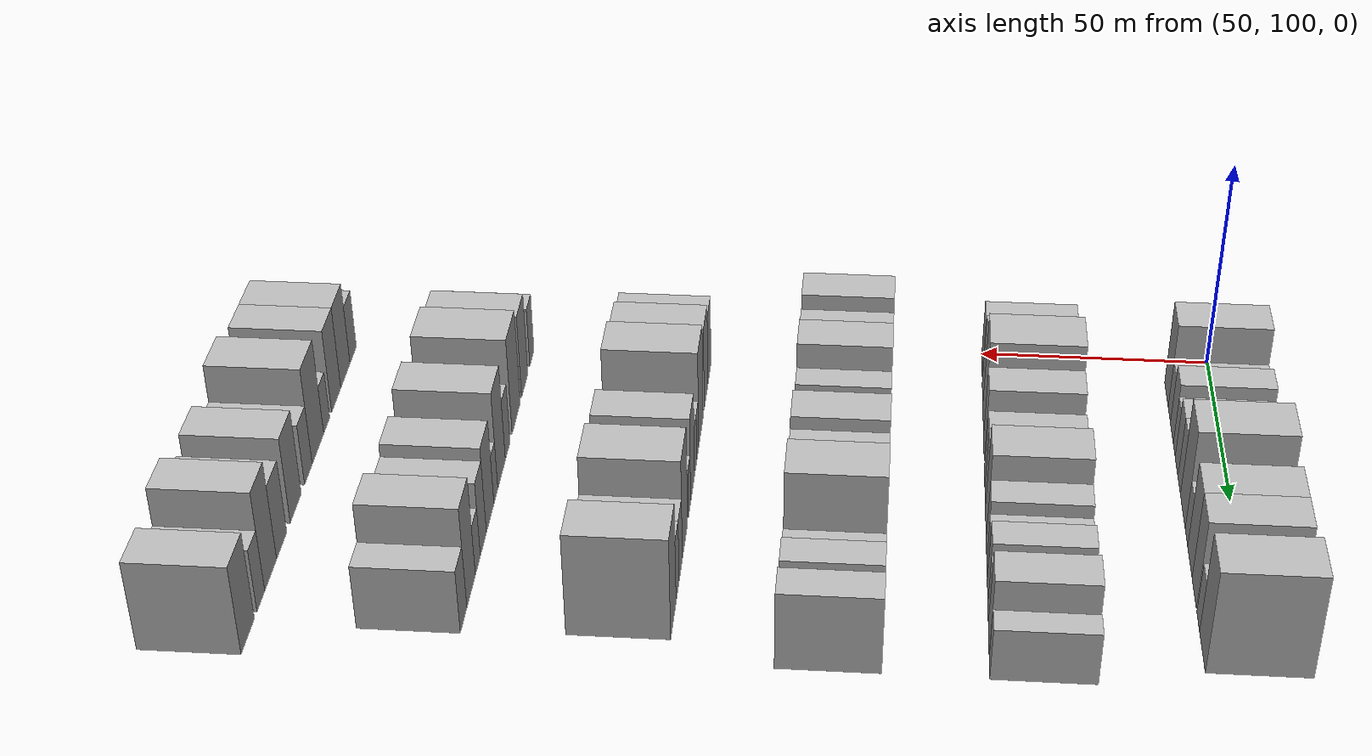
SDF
<sdf version="1.6">
 <world name="default">
  <model name="building_84">
   <static>1</static>
   <pose>50.0000 112.8845 0 0.000000 0.000000 0.000000</pose>
   <link name="link">
    <pose>0 0 10.50 0 0 0</pose>
    <collision name="collision"><geometry><box><size>20.0000 9.4455 21.0000</size></box></geometry></collision>
    <visual name="visual">
     <cast_shadows>0</cast_shadows>
     <geometry><box><size>20.0000 9.4455 21.0000</size></box></geometry>
     <material>
      <script>
       <uri>model://HANNAS_wall/materials/scripts</uri>
       <uri>model://HANNAS_wall/materials/textures</uri>
       <name>vrc/HANNAS_wall</name>
      </script>
     </material>
    </visual>
   </link>
  </model>
  <model name="building_85">
   <static>1</static>
   <pose>50.0000 120.5579 0 0.000000 0.000000 0.000000</pose>
   <link name="link">
    <pose>0 0 6.00 0 0 0</pose>
    <collision name="collision"><geometry><box><size>20.0000 5.9013 12.0000</size></box></geometry></collision>
    <visual name="visual">
     <cast_shadows>0</cast_shadows>
     <geometry><box><size>20.0000 5.9013 12.0000</size></box></geometry>
     <material>
      <script>
       <uri>model://HANNAS_wall/materials/scripts</uri>
       <uri>model://HANNAS_wall/materials/textures</uri>
       <name>vrc/HANNAS_wall</name>
      </script>
     </material>
    </visual>
   </link>
  </model>
  <model name="building_86">
   <static>1</static>
   <pose>50.0000 127.2255 0 0.000000 0.000000 0.000000</pose>
   <link name="link">
    <pose>0 0 7.50 0 0 0</pose>
    <collision name="collision"><geometry><box><size>20.0000 7.4338 15.0000</size></box></geometry></collision>
    <visual name="visual">
     <cast_shadows>0</cast_shadows>
     <geometry><box><size>20.0000 7.4338 15.0000</size></box></geometry>
     <material>
      <script>
       <uri>model://HANNAS_wall/materials/scripts</uri>
       <uri>model://HANNAS_wall/materials/textures</uri>
       <name>vrc/HANNAS_wall</name>
      </script>
     </material>
    </visual>
   </link>
  </model>
  <model name="building_87">
   <static>1</static>
   <pose>50.0000 133.3563 0 0.000000 0.000000 0.000000</pose>
   <link name="link">
    <pose>0 0 6.00 0 0 0</pose>
    <collision name="collision"><geometry><box><size>20.0000 4.8277 12.0000</size></box></geometry></collision>
    <visual name="visual">
     <cast_shadows>0</cast_shadows>
     <geometry><box><size>20.0000 4.8277 12.0000</size></box></geometry>
     <material>
      <script>
       <uri>model://HANNAS_wall/materials/scripts</uri>
       <uri>model://HANNAS_wall/materials/textures</uri>
       <name>vrc/HANNAS_wall</name>
      </script>
     </material>
    </visual>
   </link>
  </model>
  <model name="building_88">
   <static>1</static>
   <pose>50.0000 139.2260 0 0.000000 0.000000 0.000000</pose>
   <link name="link">
    <pose>0 0 7.50 0 0 0</pose>
    <collision name="collision"><geometry><box><size>20.0000 6.9118 15.0000</size></box></geometry></collision>
    <visual name="visual">
     <cast_shadows>0</cast_shadows>
     <geometry><box><size>20.0000 6.9118 15.0000</size></box></geometry>
     <material>
      <script>
       <uri>model://HANNAS_wall/materials/scripts</uri>
       <uri>model://HANNAS_wall/materials/textures</uri>
       <name>vrc/HANNAS_wall</name>
      </script>
     </material>
    </visual>
   </link>
  </model>
  <model name="building_89">
   <static>1</static>
   <pose>50.0000 145.6920 0 0.000000 0.000000 0.000000</pose>
   <link name="link">
    <pose>0 0 7.50 0 0 0</pose>
    <collision name="collision"><geometry><box><size>20.0000 6.0202 15.0000</size></box></geometry></collision>
    <visual name="visual">
     <cast_shadows>0</cast_shadows>
     <geometry><box><size>20.0000 6.0202 15.0000</size></box></geometry>
     <material>
      <script>
       <uri>model://HANNAS_wall/materials/scripts</uri>
       <uri>model://HANNAS_wall/materials/textures</uri>
       <name>vrc/HANNAS_wall</name>
      </script>
     </material>
    </visual>
   </link>
  </model>
  <model name="building_90">
   <static>1</static>
   <pose>50.0000 154.3298 0 0.000000 0.000000 0.000000</pose>
   <link name="link">
    <pose>0 0 12.00 0 0 0</pose>
    <collision name="collision"><geometry><box><size>20.0000 11.2555 24.0000</size></box></geometry></collision>
    <visual name="visual">
     <cast_shadows>0</cast_shadows>
     <geometry><box><size>20.0000 11.2555 24.0000</size></box></geometry>
     <material>
      <script>
       <uri>model://HANNAS_wall/materials/scripts</uri>
       <uri>model://HANNAS_wall/materials/textures</uri>
       <name>vrc/HANNAS_wall</name>
      </script>
     </material>
    </visual>
   </link>
  </model>
  <model name="building_91">
   <static>1</static>
   <pose>50.0000 162.8554 0 0.000000 0.000000 0.000000</pose>
   <link name="link">
    <pose>0 0 6.00 0 0 0</pose>
    <collision name="collision"><geometry><box><size>20.0000 5.7955 12.0000</size></box></geometry></collision>
    <visual name="visual">
     <cast_shadows>0</cast_shadows>
     <geometry><box><size>20.0000 5.7955 12.0000</size></box></geometry>
     <material>
      <script>
       <uri>model://HANNAS_wall/materials/scripts</uri>
       <uri>model://HANNAS_wall/materials/textures</uri>
       <name>vrc/HANNAS_wall</name>
      </script>
     </material>
    </visual>
   </link>
  </model>
  <model name="building_92">
   <static>1</static>
   <pose>50.0000 170.5846 0 0.000000 0.000000 0.000000</pose>
   <link name="link">
    <pose>0 0 10.50 0 0 0</pose>
    <collision name="collision"><geometry><box><size>20.0000 9.6629 21.0000</size></box></geometry></collision>
    <visual name="visual">
     <cast_shadows>0</cast_shadows>
     <geometry><box><size>20.0000 9.6629 21.0000</size></box></geometry>
     <material>
      <script>
       <uri>model://HANNAS_wall/materials/scripts</uri>
       <uri>model://HANNAS_wall/materials/textures</uri>
       <name>vrc/HANNAS_wall</name>
      </script>
     </material>
    </visual>
   </link>
  </model>
  <model name="building_93">
   <static>1</static>
   <pose>50.0000 180.0766 0 0.000000 0.000000 0.000000</pose>
   <link name="link">
    <pose>0 0 10.50 0 0 0</pose>
    <collision name="collision"><geometry><box><size>20.0000 9.3212 21.0000</size></box></geometry></collision>
    <visual name="visual">
     <cast_shadows>0</cast_shadows>
     <geometry><box><size>20.0000 9.3212 21.0000</size></box></geometry>
     <material>
      <script>
       <uri>model://HANNAS_wall/materials/scripts</uri>
       <uri>model://HANNAS_wall/materials/textures</uri>
       <name>vrc/HANNAS_wall</name>
      </script>
     </material>
    </visual>
   </link>
  </model>
  <model name="building_94">
   <static>1</static>
   <pose>50.0000 188.5994 0 0.000000 0.000000 0.000000</pose>
   <link name="link">
    <pose>0 0 6.00 0 0 0</pose>
    <collision name="collision"><geometry><box><size>20.0000 5.7244 12.0000</size></box></geometry></collision>
    <visual name="visual">
     <cast_shadows>0</cast_shadows>
     <geometry><box><size>20.0000 5.7244 12.0000</size></box></geometry>
     <material>
      <script>
       <uri>model://HANNAS_wall/materials/scripts</uri>
       <uri>model://HANNAS_wall/materials/textures</uri>
       <name>vrc/HANNAS_wall</name>
      </script>
     </material>
    </visual>
   </link>
  </model>
  <model name="building_95">
   <static>1</static>
   <pose>50.0000 197.2768 0 0.000000 0.000000 0.000000</pose>
   <link name="link">
    <pose>0 0 12.00 0 0 0</pose>
    <collision name="collision"><geometry><box><size>20.0000 11.6303 24.0000</size></box></geometry></collision>
    <visual name="visual">
     <cast_shadows>0</cast_shadows>
     <geometry><box><size>20.0000 11.6303 24.0000</size></box></geometry>
     <material>
      <script>
       <uri>model://HANNAS_wall/materials/scripts</uri>
       <uri>model://HANNAS_wall/materials/textures</uri>
       <name>vrc/HANNAS_wall</name>
      </script>
     </material>
    </visual>
   </link>
  </model>
  <model name="building_223">
   <static>1</static>
   <pose>90.0000 105.0967 0 0.000000 0.000000 0.000000</pose>
   <link name="link">
    <pose>0 0 7.50 0 0 0</pose>
    <collision name="collision"><geometry><box><size>20.0000 7.2370 15.0000</size></box></geometry></collision>
    <visual name="visual">
     <cast_shadows>0</cast_shadows>
     <geometry><box><size>20.0000 7.2370 15.0000</size></box></geometry>
     <material>
      <script>
       <uri>model://HANNAS_wall/materials/scripts</uri>
       <uri>model://HANNAS_wall/materials/textures</uri>
       <name>vrc/HANNAS_wall</name>
      </script>
     </material>
    </visual>
   </link>
  </model>
  <model name="building_224">
   <static>1</static>
   <pose>90.0000 115.9563 0 0.000000 0.000000 0.000000</pose>
   <link name="link">
    <pose>0 0 9.00 0 0 0</pose>
    <collision name="collision"><geometry><box><size>20.0000 8.4823 18.0000</size></box></geometry></collision>
    <visual name="visual">
     <cast_shadows>0</cast_shadows>
     <geometry><box><size>20.0000 8.4823 18.0000</size></box></geometry>
     <material>
      <script>
       <uri>model://HANNAS_wall/materials/scripts</uri>
       <uri>model://HANNAS_wall/materials/textures</uri>
       <name>vrc/HANNAS_wall</name>
      </script>
     </material>
    </visual>
   </link>
  </model>
  <model name="building_225">
   <static>1</static>
   <pose>90.0000 125.8186 0 0.000000 0.000000 0.000000</pose>
   <link name="link">
    <pose>0 0 12.00 0 0 0</pose>
    <collision name="collision"><geometry><box><size>20.0000 11.2424 24.0000</size></box></geometry></collision>
    <visual name="visual">
     <cast_shadows>0</cast_shadows>
     <geometry><box><size>20.0000 11.2424 24.0000</size></box></geometry>
     <material>
      <script>
       <uri>model://HANNAS_wall/materials/scripts</uri>
       <uri>model://HANNAS_wall/materials/textures</uri>
       <name>vrc/HANNAS_wall</name>
      </script>
     </material>
    </visual>
   </link>
  </model>
  <model name="building_226">
   <static>1</static>
   <pose>90.0000 135.6949 0 0.000000 0.000000 0.000000</pose>
   <link name="link">
    <pose>0 0 9.00 0 0 0</pose>
    <collision name="collision"><geometry><box><size>20.0000 8.5102 18.0000</size></box></geometry></collision>
    <visual name="visual">
     <cast_shadows>0</cast_shadows>
     <geometry><box><size>20.0000 8.5102 18.0000</size></box></geometry>
     <material>
      <script>
       <uri>model://HANNAS_wall/materials/scripts</uri>
       <uri>model://HANNAS_wall/materials/textures</uri>
       <name>vrc/HANNAS_wall</name>
      </script>
     </material>
    </visual>
   </link>
  </model>
  <model name="building_227">
   <static>1</static>
   <pose>90.0000 146.0924 0 0.000000 0.000000 0.000000</pose>
   <link name="link">
    <pose>0 0 7.50 0 0 0</pose>
    <collision name="collision"><geometry><box><size>20.0000 6.2847 15.0000</size></box></geometry></collision>
    <visual name="visual">
     <cast_shadows>0</cast_shadows>
     <geometry><box><size>20.0000 6.2847 15.0000</size></box></geometry>
     <material>
      <script>
       <uri>model://HANNAS_wall/materials/scripts</uri>
       <uri>model://HANNAS_wall/materials/textures</uri>
       <name>vrc/HANNAS_wall</name>
      </script>
     </material>
    </visual>
   </link>
  </model>
  <model name="building_228">
   <static>1</static>
   <pose>90.0000 152.6664 0 0.000000 0.000000 0.000000</pose>
   <link name="link">
    <pose>0 0 7.50 0 0 0</pose>
    <collision name="collision"><geometry><box><size>20.0000 6.8633 15.0000</size></box></geometry></collision>
    <visual name="visual">
     <cast_shadows>0</cast_shadows>
     <geometry><box><size>20.0000 6.8633 15.0000</size></box></geometry>
     <material>
      <script>
       <uri>model://HANNAS_wall/materials/scripts</uri>
       <uri>model://HANNAS_wall/materials/textures</uri>
       <name>vrc/HANNAS_wall</name>
      </script>
     </material>
    </visual>
   </link>
  </model>
  <model name="building_229">
   <static>1</static>
   <pose>90.0000 161.2307 0 0.000000 0.000000 0.000000</pose>
   <link name="link">
    <pose>0 0 10.50 0 0 0</pose>
    <collision name="collision"><geometry><box><size>20.0000 10.2653 21.0000</size></box></geometry></collision>
    <visual name="visual">
     <cast_shadows>0</cast_shadows>
     <geometry><box><size>20.0000 10.2653 21.0000</size></box></geometry>
     <material>
      <script>
       <uri>model://HANNAS_wall/materials/scripts</uri>
       <uri>model://HANNAS_wall/materials/textures</uri>
       <name>vrc/HANNAS_wall</name>
      </script>
     </material>
    </visual>
   </link>
  </model>
  <model name="building_230">
   <static>1</static>
   <pose>90.0000 169.8623 0 0.000000 0.000000 0.000000</pose>
   <link name="link">
    <pose>0 0 7.50 0 0 0</pose>
    <collision name="collision"><geometry><box><size>20.0000 6.9980 15.0000</size></box></geometry></collision>
    <visual name="visual">
     <cast_shadows>0</cast_shadows>
     <geometry><box><size>20.0000 6.9980 15.0000</size></box></geometry>
     <material>
      <script>
       <uri>model://HANNAS_wall/materials/scripts</uri>
       <uri>model://HANNAS_wall/materials/textures</uri>
       <name>vrc/HANNAS_wall</name>
      </script>
     </material>
    </visual>
   </link>
  </model>
  <model name="building_231">
   <static>1</static>
   <pose>90.0000 175.8409 0 0.000000 0.000000 0.000000</pose>
   <link name="link">
    <pose>0 0 6.00 0 0 0</pose>
    <collision name="collision"><geometry><box><size>20.0000 4.9593 12.0000</size></box></geometry></collision>
    <visual name="visual">
     <cast_shadows>0</cast_shadows>
     <geometry><box><size>20.0000 4.9593 12.0000</size></box></geometry>
     <material>
      <script>
       <uri>model://HANNAS_wall/materials/scripts</uri>
       <uri>model://HANNAS_wall/materials/textures</uri>
       <name>vrc/HANNAS_wall</name>
      </script>
     </material>
    </visual>
   </link>
  </model>
  <model name="building_232">
   <static>1</static>
   <pose>90.0000 182.8585 0 0.000000 0.000000 0.000000</pose>
   <link name="link">
    <pose>0 0 7.50 0 0 0</pose>
    <collision name="collision"><geometry><box><size>20.0000 7.0759 15.0000</size></box></geometry></collision>
    <visual name="visual">
     <cast_shadows>0</cast_shadows>
     <geometry><box><size>20.0000 7.0759 15.0000</size></box></geometry>
     <material>
      <script>
       <uri>model://HANNAS_wall/materials/scripts</uri>
       <uri>model://HANNAS_wall/materials/textures</uri>
       <name>vrc/HANNAS_wall</name>
      </script>
     </material>
    </visual>
   </link>
  </model>
  <model name="building_233">
   <static>1</static>
   <pose>90.0000 189.2637 0 0.000000 0.000000 0.000000</pose>
   <link name="link">
    <pose>0 0 6.00 0 0 0</pose>
    <collision name="collision"><geometry><box><size>20.0000 5.7344 12.0000</size></box></geometry></collision>
    <visual name="visual">
     <cast_shadows>0</cast_shadows>
     <geometry><box><size>20.0000 5.7344 12.0000</size></box></geometry>
     <material>
      <script>
       <uri>model://HANNAS_wall/materials/scripts</uri>
       <uri>model://HANNAS_wall/materials/textures</uri>
       <name>vrc/HANNAS_wall</name>
      </script>
     </material>
    </visual>
   </link>
  </model>
  <model name="building_234">
   <static>1</static>
   <pose>90.0000 196.5742 0 0.000000 0.000000 0.000000</pose>
   <link name="link">
    <pose>0 0 9.00 0 0 0</pose>
    <collision name="collision"><geometry><box><size>20.0000 8.8866 18.0000</size></box></geometry></collision>
    <visual name="visual">
     <cast_shadows>0</cast_shadows>
     <geometry><box><size>20.0000 8.8866 18.0000</size></box></geometry>
     <material>
      <script>
       <uri>model://HANNAS_wall/materials/scripts</uri>
       <uri>model://HANNAS_wall/materials/textures</uri>
       <name>vrc/HANNAS_wall</name>
      </script>
     </material>
    </visual>
   </link>
  </model>
  <model name="building_235">
   <static>1</static>
   <pose>90.0000 204.8858 0 0.000000 0.000000 0.000000</pose>
   <link name="link">
    <pose>0 0 6.00 0 0 0</pose>
    <collision name="collision"><geometry><box><size>20.0000 5.7367 12.0000</size></box></geometry></collision>
    <visual name="visual">
     <cast_shadows>0</cast_shadows>
     <geometry><box><size>20.0000 5.7367 12.0000</size></box></geometry>
     <material>
      <script>
       <uri>model://HANNAS_wall/materials/scripts</uri>
       <uri>model://HANNAS_wall/materials/textures</uri>
       <name>vrc/HANNAS_wall</name>
      </script>
     </material>
    </visual>
   </link>
  </model>
  <model name="building_362">
   <static>1</static>
   <pose>130.0000 106.6220 0 0.000000 0.000000 0.000000</pose>
   <link name="link">
    <pose>0 0 10.50 0 0 0</pose>
    <collision name="collision"><geometry><box><size>20.0000 9.0452 21.0000</size></box></geometry></collision>
    <visual name="visual">
     <cast_shadows>0</cast_shadows>
     <geometry><box><size>20.0000 9.0452 21.0000</size></box></geometry>
     <material>
      <script>
       <uri>model://HANNAS_wall/materials/scripts</uri>
       <uri>model://HANNAS_wall/materials/textures</uri>
       <name>vrc/HANNAS_wall</name>
      </script>
     </material>
    </visual>
   </link>
  </model>
  <model name="building_363">
   <static>1</static>
   <pose>130.0000 116.4598 0 0.000000 0.000000 0.000000</pose>
   <link name="link">
    <pose>0 0 9.00 0 0 0</pose>
    <collision name="collision"><geometry><box><size>20.0000 8.6305 18.0000</size></box></geometry></collision>
    <visual name="visual">
     <cast_shadows>0</cast_shadows>
     <geometry><box><size>20.0000 8.6305 18.0000</size></box></geometry>
     <material>
      <script>
       <uri>model://HANNAS_wall/materials/scripts</uri>
       <uri>model://HANNAS_wall/materials/textures</uri>
       <name>vrc/HANNAS_wall</name>
      </script>
     </material>
    </visual>
   </link>
  </model>
  <model name="building_364">
   <static>1</static>
   <pose>130.0000 125.4727 0 0.000000 0.000000 0.000000</pose>
   <link name="link">
    <pose>0 0 10.50 0 0 0</pose>
    <collision name="collision"><geometry><box><size>20.0000 9.3953 21.0000</size></box></geometry></collision>
    <visual name="visual">
     <cast_shadows>0</cast_shadows>
     <geometry><box><size>20.0000 9.3953 21.0000</size></box></geometry>
     <material>
      <script>
       <uri>model://HANNAS_wall/materials/scripts</uri>
       <uri>model://HANNAS_wall/materials/textures</uri>
       <name>vrc/HANNAS_wall</name>
      </script>
     </material>
    </visual>
   </link>
  </model>
  <model name="building_365">
   <static>1</static>
   <pose>130.0000 133.2939 0 0.000000 0.000000 0.000000</pose>
   <link name="link">
    <pose>0 0 7.50 0 0 0</pose>
    <collision name="collision"><geometry><box><size>20.0000 6.2470 15.0000</size></box></geometry></collision>
    <visual name="visual">
     <cast_shadows>0</cast_shadows>
     <geometry><box><size>20.0000 6.2470 15.0000</size></box></geometry>
     <material>
      <script>
       <uri>model://HANNAS_wall/materials/scripts</uri>
       <uri>model://HANNAS_wall/materials/textures</uri>
       <name>vrc/HANNAS_wall</name>
      </script>
     </material>
    </visual>
   </link>
  </model>
  <model name="building_366">
   <static>1</static>
   <pose>130.0000 138.8889 0 0.000000 0.000000 0.000000</pose>
   <link name="link">
    <pose>0 0 6.00 0 0 0</pose>
    <collision name="collision"><geometry><box><size>20.0000 4.9431 12.0000</size></box></geometry></collision>
    <visual name="visual">
     <cast_shadows>0</cast_shadows>
     <geometry><box><size>20.0000 4.9431 12.0000</size></box></geometry>
     <material>
      <script>
       <uri>model://HANNAS_wall/materials/scripts</uri>
       <uri>model://HANNAS_wall/materials/textures</uri>
       <name>vrc/HANNAS_wall</name>
      </script>
     </material>
    </visual>
   </link>
  </model>
  <model name="building_367">
   <static>1</static>
   <pose>130.0000 144.1494 0 0.000000 0.000000 0.000000</pose>
   <link name="link">
    <pose>0 0 6.00 0 0 0</pose>
    <collision name="collision"><geometry><box><size>20.0000 5.5778 12.0000</size></box></geometry></collision>
    <visual name="visual">
     <cast_shadows>0</cast_shadows>
     <geometry><box><size>20.0000 5.5778 12.0000</size></box></geometry>
     <material>
      <script>
       <uri>model://HANNAS_wall/materials/scripts</uri>
       <uri>model://HANNAS_wall/materials/textures</uri>
       <name>vrc/HANNAS_wall</name>
      </script>
     </material>
    </visual>
   </link>
  </model>
  <model name="building_368">
   <static>1</static>
   <pose>130.0000 151.6136 0 0.000000 0.000000 0.000000</pose>
   <link name="link">
    <pose>0 0 10.50 0 0 0</pose>
    <collision name="collision"><geometry><box><size>20.0000 9.3505 21.0000</size></box></geometry></collision>
    <visual name="visual">
     <cast_shadows>0</cast_shadows>
     <geometry><box><size>20.0000 9.3505 21.0000</size></box></geometry>
     <material>
      <script>
       <uri>model://HANNAS_wall/materials/scripts</uri>
       <uri>model://HANNAS_wall/materials/textures</uri>
       <name>vrc/HANNAS_wall</name>
      </script>
     </material>
    </visual>
   </link>
  </model>
  <model name="building_369">
   <static>1</static>
   <pose>130.0000 160.5918 0 0.000000 0.000000 0.000000</pose>
   <link name="link">
    <pose>0 0 9.00 0 0 0</pose>
    <collision name="collision"><geometry><box><size>20.0000 8.6060 18.0000</size></box></geometry></collision>
    <visual name="visual">
     <cast_shadows>0</cast_shadows>
     <geometry><box><size>20.0000 8.6060 18.0000</size></box></geometry>
     <material>
      <script>
       <uri>model://HANNAS_wall/materials/scripts</uri>
       <uri>model://HANNAS_wall/materials/textures</uri>
       <name>vrc/HANNAS_wall</name>
      </script>
     </material>
    </visual>
   </link>
  </model>
  <model name="building_370">
   <static>1</static>
   <pose>130.0000 173.4102 0 0.000000 0.000000 0.000000</pose>
   <link name="link">
    <pose>0 0 12.00 0 0 0</pose>
    <collision name="collision"><geometry><box><size>20.0000 11.0306 24.0000</size></box></geometry></collision>
    <visual name="visual">
     <cast_shadows>0</cast_shadows>
     <geometry><box><size>20.0000 11.0306 24.0000</size></box></geometry>
     <material>
      <script>
       <uri>model://HANNAS_wall/materials/scripts</uri>
       <uri>model://HANNAS_wall/materials/textures</uri>
       <name>vrc/HANNAS_wall</name>
      </script>
     </material>
    </visual>
   </link>
  </model>
  <model name="building_371">
   <static>1</static>
   <pose>130.0000 183.5893 0 0.000000 0.000000 0.000000</pose>
   <link name="link">
    <pose>0 0 6.00 0 0 0</pose>
    <collision name="collision"><geometry><box><size>20.0000 5.3275 12.0000</size></box></geometry></collision>
    <visual name="visual">
     <cast_shadows>0</cast_shadows>
     <geometry><box><size>20.0000 5.3275 12.0000</size></box></geometry>
     <material>
      <script>
       <uri>model://HANNAS_wall/materials/scripts</uri>
       <uri>model://HANNAS_wall/materials/textures</uri>
       <name>vrc/HANNAS_wall</name>
      </script>
     </material>
    </visual>
   </link>
  </model>
  <model name="building_372">
   <static>1</static>
   <pose>130.0000 190.8150 0 0.000000 0.000000 0.000000</pose>
   <link name="link">
    <pose>0 0 7.50 0 0 0</pose>
    <collision name="collision"><geometry><box><size>20.0000 7.1239 15.0000</size></box></geometry></collision>
    <visual name="visual">
     <cast_shadows>0</cast_shadows>
     <geometry><box><size>20.0000 7.1239 15.0000</size></box></geometry>
     <material>
      <script>
       <uri>model://HANNAS_wall/materials/scripts</uri>
       <uri>model://HANNAS_wall/materials/textures</uri>
       <name>vrc/HANNAS_wall</name>
      </script>
     </material>
    </visual>
   </link>
  </model>
  <model name="building_373">
   <static>1</static>
   <pose>130.0000 197.1464 0 0.000000 0.000000 0.000000</pose>
   <link name="link">
    <pose>0 0 6.00 0 0 0</pose>
    <collision name="collision"><geometry><box><size>20.0000 5.5390 12.0000</size></box></geometry></collision>
    <visual name="visual">
     <cast_shadows>0</cast_shadows>
     <geometry><box><size>20.0000 5.5390 12.0000</size></box></geometry>
     <material>
      <script>
       <uri>model://HANNAS_wall/materials/scripts</uri>
       <uri>model://HANNAS_wall/materials/textures</uri>
       <name>vrc/HANNAS_wall</name>
      </script>
     </material>
    </visual>
   </link>
  </model>
  <model name="building_374">
   <static>1</static>
   <pose>130.0000 203.7652 0 0.000000 0.000000 0.000000</pose>
   <link name="link">
    <pose>0 0 9.00 0 0 0</pose>
    <collision name="collision"><geometry><box><size>20.0000 7.6985 18.0000</size></box></geometry></collision>
    <visual name="visual">
     <cast_shadows>0</cast_shadows>
     <geometry><box><size>20.0000 7.6985 18.0000</size></box></geometry>
     <material>
      <script>
       <uri>model://HANNAS_wall/materials/scripts</uri>
       <uri>model://HANNAS_wall/materials/textures</uri>
       <name>vrc/HANNAS_wall</name>
      </script>
     </material>
    </visual>
   </link>
  </model>
  <model name="building_503">
   <static>1</static>
   <pose>170.0000 112.5774 0 0.000000 0.000000 0.000000</pose>
   <link name="link">
    <pose>0 0 9.00 0 0 0</pose>
    <collision name="collision"><geometry><box><size>20.0000 8.2189 18.0000</size></box></geometry></collision>
    <visual name="visual">
     <cast_shadows>0</cast_shadows>
     <geometry><box><size>20.0000 8.2189 18.0000</size></box></geometry>
     <material>
      <script>
       <uri>model://HANNAS_wall/materials/scripts</uri>
       <uri>model://HANNAS_wall/materials/textures</uri>
       <name>vrc/HANNAS_wall</name>
      </script>
     </material>
    </visual>
   </link>
  </model>
  <model name="building_504">
   <static>1</static>
   <pose>170.0000 121.3362 0 0.000000 0.000000 0.000000</pose>
   <link name="link">
    <pose>0 0 10.50 0 0 0</pose>
    <collision name="collision"><geometry><box><size>20.0000 9.2988 21.0000</size></box></geometry></collision>
    <visual name="visual">
     <cast_shadows>0</cast_shadows>
     <geometry><box><size>20.0000 9.2988 21.0000</size></box></geometry>
     <material>
      <script>
       <uri>model://HANNAS_wall/materials/scripts</uri>
       <uri>model://HANNAS_wall/materials/textures</uri>
       <name>vrc/HANNAS_wall</name>
      </script>
     </material>
    </visual>
   </link>
  </model>
  <model name="building_505">
   <static>1</static>
   <pose>170.0000 134.3328 0 0.000000 0.000000 0.000000</pose>
   <link name="link">
    <pose>0 0 12.00 0 0 0</pose>
    <collision name="collision"><geometry><box><size>20.0000 10.6944 24.0000</size></box></geometry></collision>
    <visual name="visual">
     <cast_shadows>0</cast_shadows>
     <geometry><box><size>20.0000 10.6944 24.0000</size></box></geometry>
     <material>
      <script>
       <uri>model://HANNAS_wall/materials/scripts</uri>
       <uri>model://HANNAS_wall/materials/textures</uri>
       <name>vrc/HANNAS_wall</name>
      </script>
     </material>
    </visual>
   </link>
  </model>
  <model name="building_506">
   <static>1</static>
   <pose>170.0000 142.1340 0 0.000000 0.000000 0.000000</pose>
   <link name="link">
    <pose>0 0 6.00 0 0 0</pose>
    <collision name="collision"><geometry><box><size>20.0000 4.9079 12.0000</size></box></geometry></collision>
    <visual name="visual">
     <cast_shadows>0</cast_shadows>
     <geometry><box><size>20.0000 4.9079 12.0000</size></box></geometry>
     <material>
      <script>
       <uri>model://HANNAS_wall/materials/scripts</uri>
       <uri>model://HANNAS_wall/materials/textures</uri>
       <name>vrc/HANNAS_wall</name>
      </script>
     </material>
    </visual>
   </link>
  </model>
  <model name="building_507">
   <static>1</static>
   <pose>170.0000 147.1474 0 0.000000 0.000000 0.000000</pose>
   <link name="link">
    <pose>0 0 6.00 0 0 0</pose>
    <collision name="collision"><geometry><box><size>20.0000 5.1189 12.0000</size></box></geometry></collision>
    <visual name="visual">
     <cast_shadows>0</cast_shadows>
     <geometry><box><size>20.0000 5.1189 12.0000</size></box></geometry>
     <material>
      <script>
       <uri>model://HANNAS_wall/materials/scripts</uri>
       <uri>model://HANNAS_wall/materials/textures</uri>
       <name>vrc/HANNAS_wall</name>
      </script>
     </material>
    </visual>
   </link>
  </model>
  <model name="building_508">
   <static>1</static>
   <pose>170.0000 154.2035 0 0.000000 0.000000 0.000000</pose>
   <link name="link">
    <pose>0 0 10.50 0 0 0</pose>
    <collision name="collision"><geometry><box><size>20.0000 8.9933 21.0000</size></box></geometry></collision>
    <visual name="visual">
     <cast_shadows>0</cast_shadows>
     <geometry><box><size>20.0000 8.9933 21.0000</size></box></geometry>
     <material>
      <script>
       <uri>model://HANNAS_wall/materials/scripts</uri>
       <uri>model://HANNAS_wall/materials/textures</uri>
       <name>vrc/HANNAS_wall</name>
      </script>
     </material>
    </visual>
   </link>
  </model>
  <model name="building_509">
   <static>1</static>
   <pose>170.0000 161.1380 0 0.000000 0.000000 0.000000</pose>
   <link name="link">
    <pose>0 0 6.00 0 0 0</pose>
    <collision name="collision"><geometry><box><size>20.0000 4.8758 12.0000</size></box></geometry></collision>
    <visual name="visual">
     <cast_shadows>0</cast_shadows>
     <geometry><box><size>20.0000 4.8758 12.0000</size></box></geometry>
     <material>
      <script>
       <uri>model://HANNAS_wall/materials/scripts</uri>
       <uri>model://HANNAS_wall/materials/textures</uri>
       <name>vrc/HANNAS_wall</name>
      </script>
     </material>
    </visual>
   </link>
  </model>
  <model name="building_510">
   <static>1</static>
   <pose>170.0000 171.2174 0 0.000000 0.000000 0.000000</pose>
   <link name="link">
    <pose>0 0 12.00 0 0 0</pose>
    <collision name="collision"><geometry><box><size>20.0000 11.2830 24.0000</size></box></geometry></collision>
    <visual name="visual">
     <cast_shadows>0</cast_shadows>
     <geometry><box><size>20.0000 11.2830 24.0000</size></box></geometry>
     <material>
      <script>
       <uri>model://HANNAS_wall/materials/scripts</uri>
       <uri>model://HANNAS_wall/materials/textures</uri>
       <name>vrc/HANNAS_wall</name>
      </script>
     </material>
    </visual>
   </link>
  </model>
  <model name="building_511">
   <static>1</static>
   <pose>170.0000 180.3620 0 0.000000 0.000000 0.000000</pose>
   <link name="link">
    <pose>0 0 7.50 0 0 0</pose>
    <collision name="collision"><geometry><box><size>20.0000 7.0061 15.0000</size></box></geometry></collision>
    <visual name="visual">
     <cast_shadows>0</cast_shadows>
     <geometry><box><size>20.0000 7.0061 15.0000</size></box></geometry>
     <material>
      <script>
       <uri>model://HANNAS_wall/materials/scripts</uri>
       <uri>model://HANNAS_wall/materials/textures</uri>
       <name>vrc/HANNAS_wall</name>
      </script>
     </material>
    </visual>
   </link>
  </model>
  <model name="building_512">
   <static>1</static>
   <pose>170.0000 187.0131 0 0.000000 0.000000 0.000000</pose>
   <link name="link">
    <pose>0 0 7.50 0 0 0</pose>
    <collision name="collision"><geometry><box><size>20.0000 6.2961 15.0000</size></box></geometry></collision>
    <visual name="visual">
     <cast_shadows>0</cast_shadows>
     <geometry><box><size>20.0000 6.2961 15.0000</size></box></geometry>
     <material>
      <script>
       <uri>model://HANNAS_wall/materials/scripts</uri>
       <uri>model://HANNAS_wall/materials/textures</uri>
       <name>vrc/HANNAS_wall</name>
      </script>
     </material>
    </visual>
   </link>
  </model>
  <model name="building_513">
   <static>1</static>
   <pose>170.0000 195.5670 0 0.000000 0.000000 0.000000</pose>
   <link name="link">
    <pose>0 0 12.00 0 0 0</pose>
    <collision name="collision"><geometry><box><size>20.0000 10.8118 24.0000</size></box></geometry></collision>
    <visual name="visual">
     <cast_shadows>0</cast_shadows>
     <geometry><box><size>20.0000 10.8118 24.0000</size></box></geometry>
     <material>
      <script>
       <uri>model://HANNAS_wall/materials/scripts</uri>
       <uri>model://HANNAS_wall/materials/textures</uri>
       <name>vrc/HANNAS_wall</name>
      </script>
     </material>
    </visual>
   </link>
  </model>
  <model name="building_641">
   <static>1</static>
   <pose>210.0000 109.0022 0 0.000000 0.000000 0.000000</pose>
   <link name="link">
    <pose>0 0 7.50 0 0 0</pose>
    <collision name="collision"><geometry><box><size>20.0000 6.3173 15.0000</size></box></geometry></collision>
    <visual name="visual">
     <cast_shadows>0</cast_shadows>
     <geometry><box><size>20.0000 6.3173 15.0000</size></box></geometry>
     <material>
      <script>
       <uri>model://HANNAS_wall/materials/scripts</uri>
       <uri>model://HANNAS_wall/materials/textures</uri>
       <name>vrc/HANNAS_wall</name>
      </script>
     </material>
    </visual>
   </link>
  </model>
  <model name="building_642">
   <static>1</static>
   <pose>210.0000 119.7028 0 0.000000 0.000000 0.000000</pose>
   <link name="link">
    <pose>0 0 10.50 0 0 0</pose>
    <collision name="collision"><geometry><box><size>20.0000 9.0839 21.0000</size></box></geometry></collision>
    <visual name="visual">
     <cast_shadows>0</cast_shadows>
     <geometry><box><size>20.0000 9.0839 21.0000</size></box></geometry>
     <material>
      <script>
       <uri>model://HANNAS_wall/materials/scripts</uri>
       <uri>model://HANNAS_wall/materials/textures</uri>
       <name>vrc/HANNAS_wall</name>
      </script>
     </material>
    </visual>
   </link>
  </model>
  <model name="building_643">
   <static>1</static>
   <pose>210.0000 131.9958 0 0.000000 0.000000 0.000000</pose>
   <link name="link">
    <pose>0 0 12.00 0 0 0</pose>
    <collision name="collision"><geometry><box><size>20.0000 11.5020 24.0000</size></box></geometry></collision>
    <visual name="visual">
     <cast_shadows>0</cast_shadows>
     <geometry><box><size>20.0000 11.5020 24.0000</size></box></geometry>
     <material>
      <script>
       <uri>model://HANNAS_wall/materials/scripts</uri>
       <uri>model://HANNAS_wall/materials/textures</uri>
       <name>vrc/HANNAS_wall</name>
      </script>
     </material>
    </visual>
   </link>
  </model>
  <model name="building_644">
   <static>1</static>
   <pose>210.0000 143.8787 0 0.000000 0.000000 0.000000</pose>
   <link name="link">
    <pose>0 0 7.50 0 0 0</pose>
    <collision name="collision"><geometry><box><size>20.0000 6.2637 15.0000</size></box></geometry></collision>
    <visual name="visual">
     <cast_shadows>0</cast_shadows>
     <geometry><box><size>20.0000 6.2637 15.0000</size></box></geometry>
     <material>
      <script>
       <uri>model://HANNAS_wall/materials/scripts</uri>
       <uri>model://HANNAS_wall/materials/textures</uri>
       <name>vrc/HANNAS_wall</name>
      </script>
     </material>
    </visual>
   </link>
  </model>
  <model name="building_645">
   <static>1</static>
   <pose>210.0000 151.9830 0 0.000000 0.000000 0.000000</pose>
   <link name="link">
    <pose>0 0 12.00 0 0 0</pose>
    <collision name="collision"><geometry><box><size>20.0000 9.9449 24.0000</size></box></geometry></collision>
    <visual name="visual">
     <cast_shadows>0</cast_shadows>
     <geometry><box><size>20.0000 9.9449 24.0000</size></box></geometry>
     <material>
      <script>
       <uri>model://HANNAS_wall/materials/scripts</uri>
       <uri>model://HANNAS_wall/materials/textures</uri>
       <name>vrc/HANNAS_wall</name>
      </script>
     </material>
    </visual>
   </link>
  </model>
  <model name="building_646">
   <static>1</static>
   <pose>210.0000 159.4812 0 0.000000 0.000000 0.000000</pose>
   <link name="link">
    <pose>0 0 6.00 0 0 0</pose>
    <collision name="collision"><geometry><box><size>20.0000 5.0516 12.0000</size></box></geometry></collision>
    <visual name="visual">
     <cast_shadows>0</cast_shadows>
     <geometry><box><size>20.0000 5.0516 12.0000</size></box></geometry>
     <material>
      <script>
       <uri>model://HANNAS_wall/materials/scripts</uri>
       <uri>model://HANNAS_wall/materials/textures</uri>
       <name>vrc/HANNAS_wall</name>
      </script>
     </material>
    </visual>
   </link>
  </model>
  <model name="building_647">
   <static>1</static>
   <pose>210.0000 166.7287 0 0.000000 0.000000 0.000000</pose>
   <link name="link">
    <pose>0 0 10.50 0 0 0</pose>
    <collision name="collision"><geometry><box><size>20.0000 9.4433 21.0000</size></box></geometry></collision>
    <visual name="visual">
     <cast_shadows>0</cast_shadows>
     <geometry><box><size>20.0000 9.4433 21.0000</size></box></geometry>
     <material>
      <script>
       <uri>model://HANNAS_wall/materials/scripts</uri>
       <uri>model://HANNAS_wall/materials/textures</uri>
       <name>vrc/HANNAS_wall</name>
      </script>
     </material>
    </visual>
   </link>
  </model>
  <model name="building_648">
   <static>1</static>
   <pose>210.0000 175.1480 0 0.000000 0.000000 0.000000</pose>
   <link name="link">
    <pose>0 0 9.00 0 0 0</pose>
    <collision name="collision"><geometry><box><size>20.0000 7.3953 18.0000</size></box></geometry></collision>
    <visual name="visual">
     <cast_shadows>0</cast_shadows>
     <geometry><box><size>20.0000 7.3953 18.0000</size></box></geometry>
     <material>
      <script>
       <uri>model://HANNAS_wall/materials/scripts</uri>
       <uri>model://HANNAS_wall/materials/textures</uri>
       <name>vrc/HANNAS_wall</name>
      </script>
     </material>
    </visual>
   </link>
  </model>
  <model name="building_649">
   <static>1</static>
   <pose>210.0000 181.8269 0 0.000000 0.000000 0.000000</pose>
   <link name="link">
    <pose>0 0 6.00 0 0 0</pose>
    <collision name="collision"><geometry><box><size>20.0000 5.9625 12.0000</size></box></geometry></collision>
    <visual name="visual">
     <cast_shadows>0</cast_shadows>
     <geometry><box><size>20.0000 5.9625 12.0000</size></box></geometry>
     <material>
      <script>
       <uri>model://HANNAS_wall/materials/scripts</uri>
       <uri>model://HANNAS_wall/materials/textures</uri>
       <name>vrc/HANNAS_wall</name>
      </script>
     </material>
    </visual>
   </link>
  </model>
  <model name="building_650">
   <static>1</static>
   <pose>210.0000 189.6982 0 0.000000 0.000000 0.000000</pose>
   <link name="link">
    <pose>0 0 12.00 0 0 0</pose>
    <collision name="collision"><geometry><box><size>20.0000 9.7803 24.0000</size></box></geometry></collision>
    <visual name="visual">
     <cast_shadows>0</cast_shadows>
     <geometry><box><size>20.0000 9.7803 24.0000</size></box></geometry>
     <material>
      <script>
       <uri>model://HANNAS_wall/materials/scripts</uri>
       <uri>model://HANNAS_wall/materials/textures</uri>
       <name>vrc/HANNAS_wall</name>
      </script>
     </material>
    </visual>
   </link>
  </model>
  <model name="building_651">
   <static>1</static>
   <pose>210.0000 198.2981 0 0.000000 0.000000 0.000000</pose>
   <link name="link">
    <pose>0 0 7.50 0 0 0</pose>
    <collision name="collision"><geometry><box><size>20.0000 7.4195 15.0000</size></box></geometry></collision>
    <visual name="visual">
     <cast_shadows>0</cast_shadows>
     <geometry><box><size>20.0000 7.4195 15.0000</size></box></geometry>
     <material>
      <script>
       <uri>model://HANNAS_wall/materials/scripts</uri>
       <uri>model://HANNAS_wall/materials/textures</uri>
       <name>vrc/HANNAS_wall</name>
      </script>
     </material>
    </visual>
   </link>
  </model>
  <model name="building_786">
   <static>1</static>
   <pose>250.0000 110.6325 0 0.000000 0.000000 0.000000</pose>
   <link name="link">
    <pose>0 0 7.50 0 0 0</pose>
    <collision name="collision"><geometry><box><size>20.0000 6.7542 15.0000</size></box></geometry></collision>
    <visual name="visual">
     <cast_shadows>0</cast_shadows>
     <geometry><box><size>20.0000 6.7542 15.0000</size></box></geometry>
     <material>
      <script>
       <uri>model://HANNAS_wall/materials/scripts</uri>
       <uri>model://HANNAS_wall/materials/textures</uri>
       <name>vrc/HANNAS_wall</name>
      </script>
     </material>
    </visual>
   </link>
  </model>
  <model name="building_787">
   <static>1</static>
   <pose>250.0000 118.7846 0 0.000000 0.000000 0.000000</pose>
   <link name="link">
    <pose>0 0 10.50 0 0 0</pose>
    <collision name="collision"><geometry><box><size>20.0000 9.5500 21.0000</size></box></geometry></collision>
    <visual name="visual">
     <cast_shadows>0</cast_shadows>
     <geometry><box><size>20.0000 9.5500 21.0000</size></box></geometry>
     <material>
      <script>
       <uri>model://HANNAS_wall/materials/scripts</uri>
       <uri>model://HANNAS_wall/materials/textures</uri>
       <name>vrc/HANNAS_wall</name>
      </script>
     </material>
    </visual>
   </link>
  </model>
  <model name="building_788">
   <static>1</static>
   <pose>250.0000 128.1291 0 0.000000 0.000000 0.000000</pose>
   <link name="link">
    <pose>0 0 10.50 0 0 0</pose>
    <collision name="collision"><geometry><box><size>20.0000 9.1391 21.0000</size></box></geometry></collision>
    <visual name="visual">
     <cast_shadows>0</cast_shadows>
     <geometry><box><size>20.0000 9.1391 21.0000</size></box></geometry>
     <material>
      <script>
       <uri>model://HANNAS_wall/materials/scripts</uri>
       <uri>model://HANNAS_wall/materials/textures</uri>
       <name>vrc/HANNAS_wall</name>
      </script>
     </material>
    </visual>
   </link>
  </model>
  <model name="building_789">
   <static>1</static>
   <pose>250.0000 137.5997 0 0.000000 0.000000 0.000000</pose>
   <link name="link">
    <pose>0 0 6.00 0 0 0</pose>
    <collision name="collision"><geometry><box><size>20.0000 5.8020 12.0000</size></box></geometry></collision>
    <visual name="visual">
     <cast_shadows>0</cast_shadows>
     <geometry><box><size>20.0000 5.8020 12.0000</size></box></geometry>
     <material>
      <script>
       <uri>model://HANNAS_wall/materials/scripts</uri>
       <uri>model://HANNAS_wall/materials/textures</uri>
       <name>vrc/HANNAS_wall</name>
      </script>
     </material>
    </visual>
   </link>
  </model>
  <model name="building_790">
   <static>1</static>
   <pose>250.0000 145.9536 0 0.000000 0.000000 0.000000</pose>
   <link name="link">
    <pose>0 0 12.00 0 0 0</pose>
    <collision name="collision"><geometry><box><size>20.0000 10.9057 24.0000</size></box></geometry></collision>
    <visual name="visual">
     <cast_shadows>0</cast_shadows>
     <geometry><box><size>20.0000 10.9057 24.0000</size></box></geometry>
     <material>
      <script>
       <uri>model://HANNAS_wall/materials/scripts</uri>
       <uri>model://HANNAS_wall/materials/textures</uri>
       <name>vrc/HANNAS_wall</name>
      </script>
     </material>
    </visual>
   </link>
  </model>
  <model name="building_791">
   <static>1</static>
   <pose>250.0000 154.9146 0 0.000000 0.000000 0.000000</pose>
   <link name="link">
    <pose>0 0 7.50 0 0 0</pose>
    <collision name="collision"><geometry><box><size>20.0000 7.0163 15.0000</size></box></geometry></collision>
    <visual name="visual">
     <cast_shadows>0</cast_shadows>
     <geometry><box><size>20.0000 7.0163 15.0000</size></box></geometry>
     <material>
      <script>
       <uri>model://HANNAS_wall/materials/scripts</uri>
       <uri>model://HANNAS_wall/materials/textures</uri>
       <name>vrc/HANNAS_wall</name>
      </script>
     </material>
    </visual>
   </link>
  </model>
  <model name="building_792">
   <static>1</static>
   <pose>250.0000 166.3041 0 0.000000 0.000000 0.000000</pose>
   <link name="link">
    <pose>0 0 10.50 0 0 0</pose>
    <collision name="collision"><geometry><box><size>20.0000 9.7628 21.0000</size></box></geometry></collision>
    <visual name="visual">
     <cast_shadows>0</cast_shadows>
     <geometry><box><size>20.0000 9.7628 21.0000</size></box></geometry>
     <material>
      <script>
       <uri>model://HANNAS_wall/materials/scripts</uri>
       <uri>model://HANNAS_wall/materials/textures</uri>
       <name>vrc/HANNAS_wall</name>
      </script>
     </material>
    </visual>
   </link>
  </model>
  <model name="building_793">
   <static>1</static>
   <pose>250.0000 178.4758 0 0.000000 0.000000 0.000000</pose>
   <link name="link">
    <pose>0 0 9.00 0 0 0</pose>
    <collision name="collision"><geometry><box><size>20.0000 8.5807 18.0000</size></box></geometry></collision>
    <visual name="visual">
     <cast_shadows>0</cast_shadows>
     <geometry><box><size>20.0000 8.5807 18.0000</size></box></geometry>
     <material>
      <script>
       <uri>model://HANNAS_wall/materials/scripts</uri>
       <uri>model://HANNAS_wall/materials/textures</uri>
       <name>vrc/HANNAS_wall</name>
      </script>
     </material>
    </visual>
   </link>
  </model>
  <model name="building_794">
   <static>1</static>
   <pose>250.0000 187.6457 0 0.000000 0.000000 0.000000</pose>
   <link name="link">
    <pose>0 0 12.00 0 0 0</pose>
    <collision name="collision"><geometry><box><size>20.0000 9.7591 24.0000</size></box></geometry></collision>
    <visual name="visual">
     <cast_shadows>0</cast_shadows>
     <geometry><box><size>20.0000 9.7591 24.0000</size></box></geometry>
     <material>
      <script>
       <uri>model://HANNAS_wall/materials/scripts</uri>
       <uri>model://HANNAS_wall/materials/textures</uri>
       <name>vrc/HANNAS_wall</name>
      </script>
     </material>
    </visual>
   </link>
  </model>
  <model name="building_795">
   <static>1</static>
   <pose>250.0000 195.6263 0 0.000000 0.000000 0.000000</pose>
   <link name="link">
    <pose>0 0 7.50 0 0 0</pose>
    <collision name="collision"><geometry><box><size>20.0000 6.2021 15.0000</size></box></geometry></collision>
    <visual name="visual">
     <cast_shadows>0</cast_shadows>
     <geometry><box><size>20.0000 6.2021 15.0000</size></box></geometry>
     <material>
      <script>
       <uri>model://HANNAS_wall/materials/scripts</uri>
       <uri>model://HANNAS_wall/materials/textures</uri>
       <name>vrc/HANNAS_wall</name>
      </script>
     </material>
    </visual>
   </link>
  </model>
  <model name="building_796">
   <static>1</static>
   <pose>250.0000 205.8604 0 0.000000 0.000000 0.000000</pose>
   <link name="link">
    <pose>0 0 10.50 0 0 0</pose>
    <collision name="collision"><geometry><box><size>20.0000 10.2660 21.0000</size></box></geometry></collision>
    <visual name="visual">
     <cast_shadows>0</cast_shadows>
     <geometry><box><size>20.0000 10.2660 21.0000</size></box></geometry>
     <material>
      <script>
       <uri>model://HANNAS_wall/materials/scripts</uri>
       <uri>model://HANNAS_wall/materials/textures</uri>
       <name>vrc/HANNAS_wall</name>
      </script>
     </material>
    </visual>
   </link>
  </model>
 </world>
</sdf>
